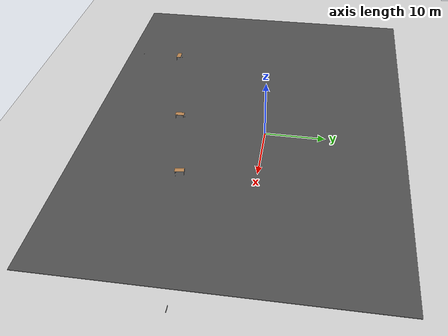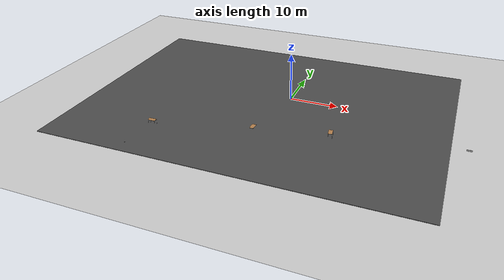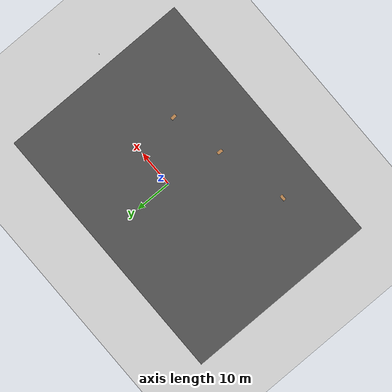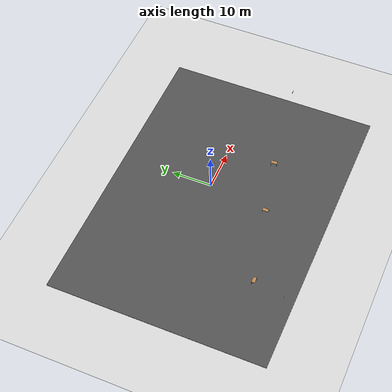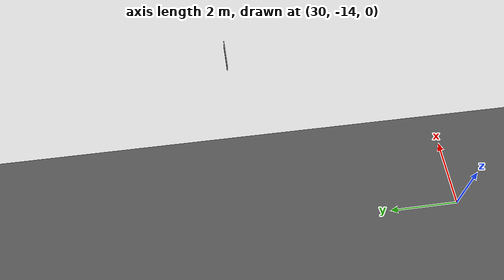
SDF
<sdf version="1.6">
 <world name="default">
  <light name="sun" type="directional">
   <pose>0 0 10 0 -0 0</pose>
   <diffuse>0.8 0.8 0.8 1</diffuse>
   <specular>0.2 0.2 0.2 1</specular>
   <attenuation>
    <range>1000</range>
    <constant>0.9</constant>
    <linear>0.01</linear>
    <quadratic>0.001</quadratic>
   </attenuation>
   <direction>-0.5 0.1 -0.9</direction>
  </light>
  <model name="ground_plane">
   <static>1</static>
   <link name="link">
    <collision name="collision">
     <geometry><plane><normal>0 0 1</normal><size>100 100</size></plane></geometry>
     <surface>
      <contact><collide_bitmask>65535</collide_bitmask></contact>
      <friction><ode><mu>100</mu><mu2>50</mu2></ode></friction>
     </surface>
    </collision>
    <visual name="visual">
     <cast_shadows>0</cast_shadows>
     <geometry><plane><normal>0 0 1</normal><size>100 100</size></plane></geometry>
     <material>
      <script><uri>file://media/materials/scripts/gazebo.material</uri><name>Gazebo/Grey</name></script>
     </material>
    </visual>
   </link>
  </model>
  <gravity>0 0 -9.8</gravity>
  <magnetic_field>6e-06 2.3e-05 -4.2e-05</magnetic_field>
  <atmosphere type="adiabatic"/>
  <physics name="default_physics" default="0" type="ode">
   <max_step_size>0.001</max_step_size>
   <real_time_factor>1</real_time_factor>
   <real_time_update_rate>1000</real_time_update_rate>
  </physics>
  <scene><ambient>0.4 0.4 0.4 1</ambient><background>0.7 0.7 0.7 1</background><shadows>1</shadows></scene>
  <spherical_coordinates>
   <surface_model>EARTH_WGS84</surface_model>
   <latitude_deg>0</latitude_deg>
   <longitude_deg>0</longitude_deg>
   <elevation>0</elevation>
   <heading_deg>0</heading_deg>
  </spherical_coordinates>
  <model name="asphalt_plane_2">
   <static>1</static>
   <link name="link">
    <collision name="collision"><geometry><box><size>0.128661 0.156849 0.1</size></box></geometry></collision>
    <visual name="visual">
     <cast_shadows>0</cast_shadows>
     <geometry><box><size>0.128661 0.156849 0.1</size></box></geometry>
     <material>
      <script>
       <uri>model://asphalt_plane/materials/scripts</uri>
       <uri>model://asphalt_plane/materials/textures</uri>
       <name>vrc/asphalt</name>
      </script>
     </material>
    </visual>
   </link>
   <pose>-22.456 -27.2792 0 0 -0 0</pose>
  </model>
  <model name="unit_box_5">
   <pose>11.6422 -20.215 0.050655 0.000521 -0.000405 -0.032949</pose>
   <link name="link">
    <inertial>
     <mass>1</mass>
     <inertia>
      <ixx>0.166667</ixx>
      <ixy>0</ixy>
      <ixz>0</ixz>
      <iyy>0.166667</iyy>
      <iyz>0</iyz>
      <izz>0.166667</izz>
     </inertia>
    </inertial>
    <collision name="collision">
     <geometry><box><size>0.00283934 0.000404745 0.00130765</size></box></geometry>
    </collision>
    <visual name="visual">
     <geometry><box><size>0.00283934 0.000404745 0.00130765</size></box></geometry>
     <material>
      <script><name>Gazebo/Grey</name><uri>file://media/materials/scripts/gazebo.material</uri></script>
     </material>
    </visual>
   </link>
  </model>
  <model name="table">
   <static>1</static>
   <link name="link">
    <collision name="surface">
     <pose>0 0 1 0 -0 0</pose>
     <geometry><box><size>1.5 0.8 0.03</size></box></geometry>
     <surface><friction><ode><mu>0.6</mu><mu2>0.6</mu2></ode></friction></surface>
    </collision>
    <visual name="visual1">
     <pose>0 0 1 0 -0 0</pose>
     <geometry><box><size>1.5 0.8 0.03</size></box></geometry>
     <material>
      <script><uri>file://media/materials/scripts/gazebo.material</uri><name>Gazebo/Wood</name></script>
     </material>
    </visual>
    <collision name="front_left_leg">
     <pose>0.68 0.38 0.5 0 -0 0</pose>
     <geometry><cylinder><radius>0.02</radius><length>1</length></cylinder></geometry>
    </collision>
    <visual name="front_left_leg">
     <pose>0.68 0.38 0.5 0 -0 0</pose>
     <geometry><cylinder><radius>0.02</radius><length>1</length></cylinder></geometry>
     <material>
      <script><uri>file://media/materials/scripts/gazebo.material</uri><name>Gazebo/Grey</name></script>
     </material>
    </visual>
    <collision name="front_right_leg">
     <pose>0.68 -0.38 0.5 0 -0 0</pose>
     <geometry><cylinder><radius>0.02</radius><length>1</length></cylinder></geometry>
    </collision>
    <visual name="front_right_leg">
     <pose>0.68 -0.38 0.5 0 -0 0</pose>
     <geometry><cylinder><radius>0.02</radius><length>1</length></cylinder></geometry>
     <material>
      <script><uri>file://media/materials/scripts/gazebo.material</uri><name>Gazebo/Grey</name></script>
     </material>
    </visual>
    <collision name="back_right_leg">
     <pose>-0.68 -0.38 0.5 0 -0 0</pose>
     <geometry><cylinder><radius>0.02</radius><length>1</length></cylinder></geometry>
    </collision>
    <visual name="back_right_leg">
     <pose>-0.68 -0.38 0.5 0 -0 0</pose>
     <geometry><cylinder><radius>0.02</radius><length>1</length></cylinder></geometry>
     <material>
      <script><uri>file://media/materials/scripts/gazebo.material</uri><name>Gazebo/Grey</name></script>
     </material>
    </visual>
    <collision name="back_left_leg">
     <pose>-0.68 0.38 0.5 0 -0 0</pose>
     <geometry><cylinder><radius>0.02</radius><length>1</length></cylinder></geometry>
    </collision>
    <visual name="back_left_leg">
     <pose>-0.68 0.38 0.5 0 -0 0</pose>
     <geometry><cylinder><radius>0.02</radius><length>1</length></cylinder></geometry>
     <material>
      <script><uri>file://media/materials/scripts/gazebo.material</uri><name>Gazebo/Grey</name></script>
     </material>
    </visual>
   </link>
   <pose>-21.3169 -19.675 0 0 -0 0</pose>
  </model>
  <model name="unit_box">
   <pose>36.0648 -7.82962 0.145261 -4e-06 -0 2.6e-05</pose>
   <link name="link">
    <inertial>
     <mass>1</mass>
     <inertia>
      <ixx>0.166667</ixx>
      <ixy>0</ixy>
      <ixz>0</ixz>
      <iyy>0.166667</iyy>
      <iyz>0</iyz>
      <izz>0.166667</izz>
     </inertia>
    </inertial>
    <collision name="collision"><geometry><box><size>1 0.0208386 0.290522</size></box></geometry></collision>
    <visual name="visual">
     <geometry><box><size>1 0.0208386 0.290522</size></box></geometry>
     <material>
      <script><name>Gazebo/Grey</name><uri>file://media/materials/scripts/gazebo.material</uri></script>
     </material>
    </visual>
   </link>
  </model>
  <model name="asphalt_plane">
   <static>1</static>
   <link name="link">
    <collision name="collision"><geometry><box><size>73.1512 53.0541 0.1</size></box></geometry></collision>
    <visual name="visual">
     <cast_shadows>0</cast_shadows>
     <geometry><box><size>73.1512 53.0541 0.1</size></box></geometry>
     <material>
      <script>
       <uri>model://asphalt_plane/materials/scripts</uri>
       <uri>model://asphalt_plane/materials/textures</uri>
       <name>vrc/asphalt</name>
      </script>
     </material>
    </visual>
   </link>
   <pose>-3.57273 -3.41126 0 0 -0 0</pose>
  </model>
  <model name="table_0">
   <static>1</static>
   <link name="link">
    <collision name="surface">
     <pose>0 0 1 0 -0 0</pose>
     <geometry><box><size>1.5 0.8 0.03</size></box></geometry>
     <surface><friction><ode><mu>0.6</mu><mu2>0.6</mu2></ode></friction></surface>
    </collision>
    <visual name="visual1">
     <pose>0 0 1 0 -0 0</pose>
     <geometry><box><size>1.5 0.8 0.03</size></box></geometry>
     <material>
      <script><uri>file://media/materials/scripts/gazebo.material</uri><name>Gazebo/Wood</name></script>
     </material>
    </visual>
    <collision name="front_left_leg">
     <pose>0.68 0.38 0.5 0 -0 0</pose>
     <geometry><cylinder><radius>0.02</radius><length>1</length></cylinder></geometry>
    </collision>
    <visual name="front_left_leg">
     <pose>0.68 0.38 0.5 0 -0 0</pose>
     <geometry><cylinder><radius>0.02</radius><length>1</length></cylinder></geometry>
     <material>
      <script><uri>file://media/materials/scripts/gazebo.material</uri><name>Gazebo/Grey</name></script>
     </material>
    </visual>
    <collision name="front_right_leg">
     <pose>0.68 -0.38 0.5 0 -0 0</pose>
     <geometry><cylinder><radius>0.02</radius><length>1</length></cylinder></geometry>
    </collision>
    <visual name="front_right_leg">
     <pose>0.68 -0.38 0.5 0 -0 0</pose>
     <geometry><cylinder><radius>0.02</radius><length>1</length></cylinder></geometry>
     <material>
      <script><uri>file://media/materials/scripts/gazebo.material</uri><name>Gazebo/Grey</name></script>
     </material>
    </visual>
    <collision name="back_right_leg">
     <pose>-0.68 -0.38 0.5 0 -0 0</pose>
     <geometry><cylinder><radius>0.02</radius><length>1</length></cylinder></geometry>
    </collision>
    <visual name="back_right_leg">
     <pose>-0.68 -0.38 0.5 0 -0 0</pose>
     <geometry><cylinder><radius>0.02</radius><length>1</length></cylinder></geometry>
     <material>
      <script><uri>file://media/materials/scripts/gazebo.material</uri><name>Gazebo/Grey</name></script>
     </material>
    </visual>
    <collision name="back_left_leg">
     <pose>-0.68 0.38 0.5 0 -0 0</pose>
     <geometry><cylinder><radius>0.02</radius><length>1</length></cylinder></geometry>
    </collision>
    <visual name="back_left_leg">
     <pose>-0.68 0.38 0.5 0 -0 0</pose>
     <geometry><cylinder><radius>0.02</radius><length>1</length></cylinder></geometry>
     <material>
      <script><uri>file://media/materials/scripts/gazebo.material</uri><name>Gazebo/Grey</name></script>
     </material>
    </visual>
   </link>
   <pose>11.8656 -11.8358 0 -0.006815 0.011828 -1.44783</pose>
  </model>
  <model name="table_0_clone">
   <static>1</static>
   <link name="link">
    <collision name="surface">
     <pose>0 0 1 0 -0 0</pose>
     <geometry><box><size>1.5 0.8 0.03</size></box></geometry>
     <surface><friction><ode><mu>0.6</mu><mu2>0.6</mu2></ode></friction></surface>
    </collision>
    <visual name="visual1">
     <pose>0 0 1 0 -0 0</pose>
     <geometry><box><size>1.5 0.8 0.03</size></box></geometry>
     <material>
      <script><uri>file://media/materials/scripts/gazebo.material</uri><name>Gazebo/Wood</name></script>
     </material>
    </visual>
    <collision name="front_left_leg">
     <pose>0.68 0.38 0.5 0 -0 0</pose>
     <geometry><cylinder><radius>0.02</radius><length>1</length></cylinder></geometry>
    </collision>
    <visual name="front_left_leg">
     <pose>0.68 0.38 0.5 0 -0 0</pose>
     <geometry><cylinder><radius>0.02</radius><length>1</length></cylinder></geometry>
     <material>
      <script><uri>file://media/materials/scripts/gazebo.material</uri><name>Gazebo/Grey</name></script>
     </material>
    </visual>
    <collision name="front_right_leg">
     <pose>0.68 -0.38 0.5 0 -0 0</pose>
     <geometry><cylinder><radius>0.02</radius><length>1</length></cylinder></geometry>
    </collision>
    <visual name="front_right_leg">
     <pose>0.68 -0.38 0.5 0 -0 0</pose>
     <geometry><cylinder><radius>0.02</radius><length>1</length></cylinder></geometry>
     <material>
      <script><uri>file://media/materials/scripts/gazebo.material</uri><name>Gazebo/Grey</name></script>
     </material>
    </visual>
    <collision name="back_right_leg">
     <pose>-0.68 -0.38 0.5 0 -0 0</pose>
     <geometry><cylinder><radius>0.02</radius><length>1</length></cylinder></geometry>
    </collision>
    <visual name="back_right_leg">
     <pose>-0.68 -0.38 0.5 0 -0 0</pose>
     <geometry><cylinder><radius>0.02</radius><length>1</length></cylinder></geometry>
     <material>
      <script><uri>file://media/materials/scripts/gazebo.material</uri><name>Gazebo/Grey</name></script>
     </material>
    </visual>
    <collision name="back_left_leg">
     <pose>-0.68 0.38 0.5 0 -0 0</pose>
     <geometry><cylinder><radius>0.02</radius><length>1</length></cylinder></geometry>
    </collision>
    <visual name="back_left_leg">
     <pose>-0.68 0.38 0.5 0 -0 0</pose>
     <geometry><cylinder><radius>0.02</radius><length>1</length></cylinder></geometry>
     <material>
      <script><uri>file://media/materials/scripts/gazebo.material</uri><name>Gazebo/Grey</name></script>
     </material>
    </visual>
   </link>
   <pose>-2.30537 -15.0737 0 -0.019041 0.00458 -1.59505</pose>
  </model>
 </world>
</sdf>
